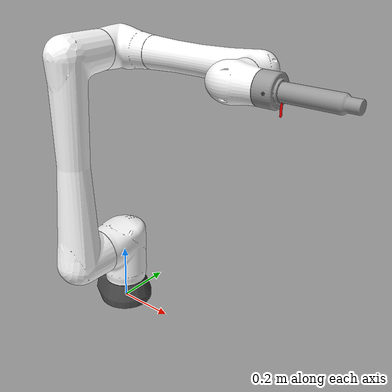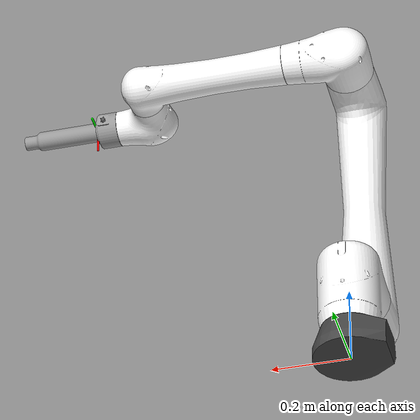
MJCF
<mujoco>
  <compiler autolimits="true" balanceinertia="true" meshdir="assets" angle="radian" coordinate="local"/>
  <option integrator="implicitfast"/>
  <option gravity="0 0 -9.81"/>
  <size memory="2M"/>

  <visual>
    <global azimuth="120" elevation="-20"/>
    <headlight diffuse="0.6 0.6 0.6" ambient="0.1 0.1 0.1" specular="0 0 0"/>
    <rgba haze="0.15 0.25 0.35 1"/>
  </visual>

  <default>
    <default class="Fanuc/">
      <material specular="0.5" shininess="0.25"/>
      <default class="Fanuc/type_joint1">
        <joint range="-3.1415000000000002 3.1415000000000002"/>
        <general ctrlrange="-3.1415000000000002 3.1415000000000002"/>
      </default>
      <default class="Fanuc/visual">
        <geom type="mesh" group="2" contype="0" conaffinity="0"/>
      </default>
      <default class="Fanuc/collision">
        <geom type="mesh" group="3" rgba="0.7 0.1 0.1 0.3" contype="1" conaffinity="1"/>
        <default class="Fanuc/eef_collision">
          <geom type="cylinder" group="3" rgba="0.7 0.1 0.1 0.3" contype="1" conaffinity="1"/>
        </default>
      </default>
    </default>
  </default>

  <asset>
    <material name="Fanuc/white" class="Fanuc/" rgba="1 1 1 1"/>
    <material name="Fanuc/grey" class="Fanuc/" rgba="0.278 0.278 0.278 1"/>
    <mesh name="Fanuc/base" class="Fanuc/" file="base.STL" scale="0.001 0.001 0.001"/>
    <mesh name="Fanuc/link1" class="Fanuc/" file="L1.STL" scale="0.001 0.001 0.001"/>
    <mesh name="Fanuc/link2" class="Fanuc/" file="L2.STL" scale="0.001 0.001 0.001"/>
    <mesh name="Fanuc/link3" class="Fanuc/" file="L3.STL" scale="0.001 0.001 0.001"/>
    <mesh name="Fanuc/link4" class="Fanuc/" file="L4.STL" scale="0.001 0.001 0.001"/>
    <mesh name="Fanuc/link5" class="Fanuc/" file="L5.STL" scale="0.001 0.001 0.001"/>
    <mesh name="Fanuc/link6" class="Fanuc/" file="L6.STL" scale="0.001 0.001 0.001"/>
  <mesh name="tool_mesh" file="painting_gun.obj"/>
    <!-- Painting gun collision mesh -->
    <mesh name="painting_gun_collision_mesh" file="painting_gun.obj"/>
  </asset>

  <worldbody>
    <light pos="0 0 1.5" dir="0 0 -1" directional="true"/>

    <body name="Fanuc/Robot">
      <body name="base" pos="0 0 0" euler="0 0 0">
        <inertial pos="-0.00382056 0.00206950 0.01942089" euler="0 0 0" mass="3.50083457958494" diaginertia="0.0153015257917955 0.0159333503953857 0.0112162302268266"/>
        <geom type="capsule" fromto="0 0 0 0.05 0 0" rgba="1 0 0 1" size="0.002" contype="0" conaffinity="0"/>
        <geom type="capsule" fromto="0 0 0 0 0.05 0" rgba="0 1 0 1" size="0.002" contype="0" conaffinity="0"/>
        <geom type="capsule" fromto="0 0 0 0 0 0.05" rgba="0 0 1 1" size="0.002" contype="0" conaffinity="0"/>

        <geom name="Fanuc/geom_base_visual" class="Fanuc/visual" material="Fanuc/grey" mesh="Fanuc/base"/>
        <geom name="Fanuc/geom_base_collision" class="Fanuc/collision" type="cylinder" pos="0 0 0.15" size="0.08 0.14" rgba="1 0 0 0.4" contype="1" conaffinity="1" group="3"/>

        <body name="link1" pos="0 0 0.1277" euler="0 0 0">
          <inertial pos="-0.00569797 0.00186743 0.11379122" euler="0 0 0" mass="7.93600000" diaginertia="0.05299330 0.04558587 0.03437197"/>
          <joint name="joint_1" class="Fanuc/type_joint1" axis="0 0 1" damping="4"/>
          <geom name="Fanuc/geom_link1_visual" class="Fanuc/visual" material="Fanuc/white" mesh="Fanuc/link1"/>

          <body name="link2" pos="0 0 0.117" euler="0 0 0">
            <inertial pos="0.00030878 -0.23265489 0.40597396" euler="0 0 0" mass="17.57600000" diaginertia="1.03123975 1.00774475 0.07887079"/>
            <joint name="joint_2" class="Fanuc/type_joint1" axis="0 1 0" damping="4"/>
            <geom name="Fanuc/geom_link2_visual" class="Fanuc/visual" material="Fanuc/white" mesh="Fanuc/link2"/>
            <geom name="Fanuc/geom_link2_collision" class="Fanuc/collision" type="cylinder" pos="0 -0.22 0.355" size="0.07 0.38" rgba="0 0 1 0.4" contype="1" conaffinity="1" group="3"/>

            <body name="link3" pos="0 0 0.71" euler="0 0 0">
              <inertial pos="0.02023601 0.02297838 -0.00069627" euler="0 0 0" mass="4.10700000" diaginertia="0.00972653 0.01821673 0.01861618"/>
              <joint name="joint_3" range="-4.71238898038469 4.71238898038469" axis="0 -1 0" damping="4"/>
              <geom name="Fanuc/geom_link3_visual" class="Fanuc/visual" material="Fanuc/white" mesh="Fanuc/link3"/>
              <geom name="Fanuc/geom_link3_collision" class="Fanuc/collision" type="cylinder" pos="0.27 0 0" euler="0 1.5708 0" size="0.05 0.27" rgba="1 1 0 0.4" contype="1" conaffinity="1" group="3"/>

              <body name="link4" pos="0.54 0 0.0" euler="0 0 0">
                <inertial pos="-0.01795465 0.00357090 0.00016217" euler="0 0 0" mass="4.95900000" diaginertia="0.00826192 0.07702783 0.07766716"/>
                <joint name="joint_4" range="-3.3161255787892263 3.3161255787892263" axis="-1 0 0" damping="4"/>
                <geom name="Fanuc/geom_link4_visual" class="Fanuc/visual" material="Fanuc/white" mesh="Fanuc/link4"/>

                <body name="link5" pos="0.0 -0.15 0.0" euler="0 0 0">
                  <inertial pos="0.00186419 0.00283739 -0.00032750" euler="0 0 0" mass="2.14100000" diaginertia="0.00413567 0.00472478 0.00588804"/>
                  <joint name="joint_5" class="Fanuc/type_joint1" axis="0 -1 0" damping="5"/>
                  <geom name="Fanuc/geom_link5_visual" class="Fanuc/visual" material="Fanuc/white" mesh="Fanuc/link5"/>
                  <geom name="Fanuc/geom_link5_collision" class="Fanuc/collision" type="cylinder" pos="0.07 0 0" euler="0 1.5708 0" size="0.045 0.08" rgba="0 1 1 0.4" contype="1" conaffinity="1" group="3"/>

                  <body name="link6" pos="0.15999999999999992 0.0 0.0" euler="0 0 0">
                    <inertial pos="-0.01611361 0.00604174 0.00031788" euler="0 0 0" mass="0.52000000" diaginertia="0.00057032 0.00038816 0.00045904"/>
                    <joint name="joint_6" range="-3.9269908169872414 3.9269908169872414" axis="-1 0 0" damping="9"/>
                    <geom name="Fanuc/geom_link6_visual" class="Fanuc/visual" rgba="0.6 0.6 0.6 1" mesh="Fanuc/link6"/>

                    <site name="ee_site" pos="0.0 0 0" euler="0 1.5708 0"/>
                    <body name="ee_frame_visual_only" pos="0.0 0 0" euler="0 1.5708 0">
                      <geom type="capsule" fromto="0 0 0 0.05 0 0" rgba="1 0 0 1" size="0.002" contype="0" conaffinity="0"/>
                      <geom type="capsule" fromto="0 0 0 0 0.05 0" rgba="0 1 0 1" size="0.002" contype="0" conaffinity="0"/>
                      <geom type="capsule" fromto="0 0 0 0 0 0.05" rgba="0 0 1 1" size="0.002" contype="0" conaffinity="0"/>

                      <body name="tool_frame" pos="0 0 0.0" quat="1 0 0 0">
                        <site name="tool_site" pos="0 0.0 0.0" quat="1 0 0 0"/>
                        <geom type="capsule" fromto="0 0 0 0.06 0 0" rgba="1 0 0 1" size="0.003" contype="0" conaffinity="0"/>
                        <geom type="capsule" fromto="0 0 0 0 0.06 0" rgba="0 1 0 1" size="0.003" contype="0" conaffinity="0"/>
                        <geom type="capsule" fromto="0 0 0 0 0 0.06" rgba="0 0 1 1" size="0.003" contype="0" conaffinity="0"/>
                      </body>
                    <body name="tool_base" pos="0 0 0">
      <inertial mass="0.752" pos="0.0 0.0 0.01" diaginertia="0.0143 0.0143 0.0016"/>
      <geom type="mesh" mesh="tool_mesh" rgba="0.6 0.6 0.6 1" contype="0" conaffinity="0" group="0"/>
      <!-- collision mesh -->
      <geom name="painting_gun_collision" type="mesh" mesh="painting_gun_collision_mesh" pos="0 0 0.0" rgba="0.7 0.1 0.1 0.3" contype="1" conaffinity="1" group="3"/>
      <!-- Marker (red sphere) to specify the origin -->
      <site name="mount_site" pos="0 0 0" size="0.005" rgba="1 0 0 1"/>
      <!-- Marker (green sphere) to specify the point of application of the weight -->
    </body>
  </body>
                  </body>
                </body>
              </body>
            </body>
          </body>
        </body>
      </body>
    </body>
  </worldbody>

  <actuator>
    <motor joint="joint_1" gear="1"/>
    <motor joint="joint_2" gear="1"/>
    <motor joint="joint_3" gear="1"/>
    <motor joint="joint_4" gear="1"/>
    <motor joint="joint_5" gear="1"/>
    <motor joint="joint_6" gear="1"/>
  </actuator>
</mujoco>
